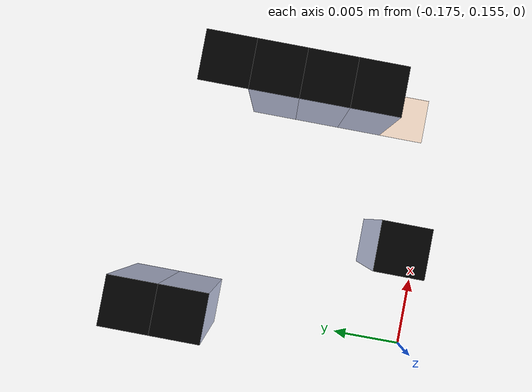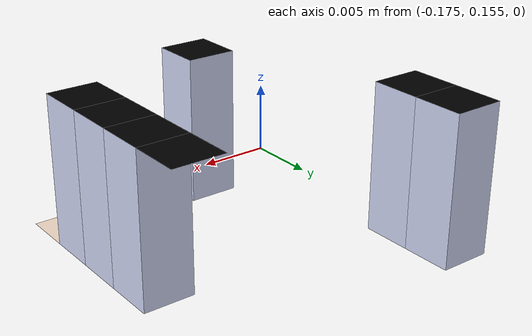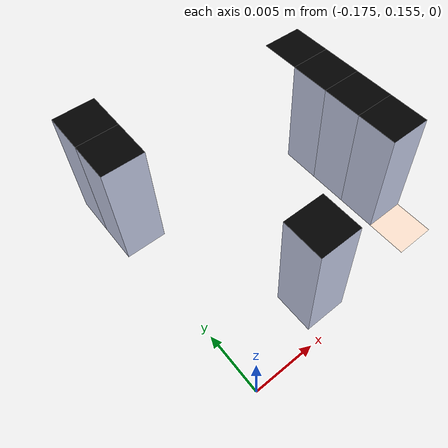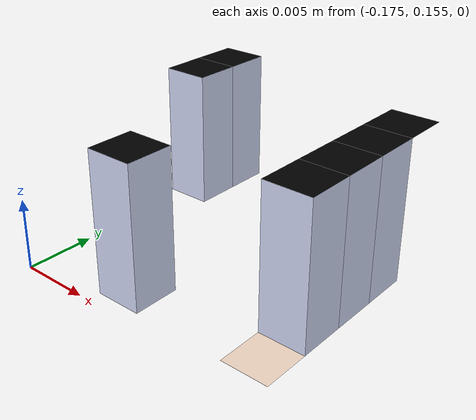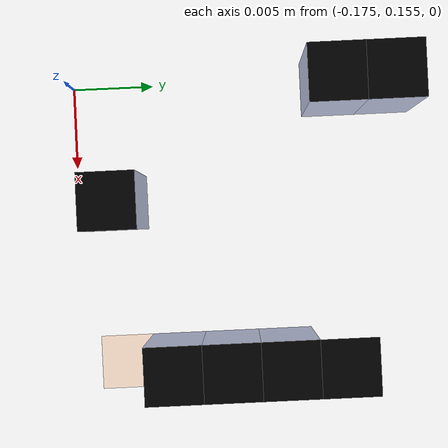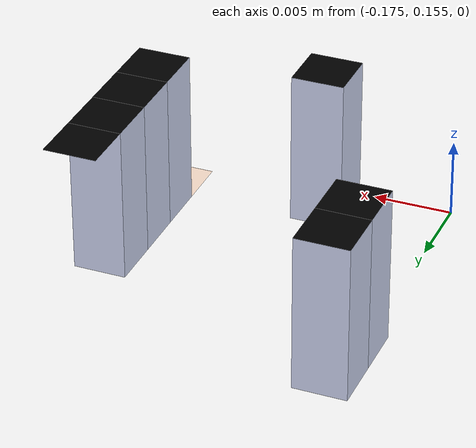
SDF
<sdf version="1.6">
 <world name="default">
  <model name="part114.obj">
   <static>1</static>
   <link name="link_d114">
    <inertial>
     <mass>0</mass>
     <inertia>
      <ixx>0.166667</ixx>
      <ixy>0</ixy>
      <ixz>0</ixz>
      <iyy>0.166667</iyy>
      <iyz>0</iyz>
      <izz>0.166667</izz>
     </inertia>
    </inertial>
    <collision name="collision_114">
     <geometry><mesh><scale>1 1 1</scale><uri>part114.obj</uri></mesh></geometry>
    </collision>
    <visual name="visual">
     <geometry><mesh><scale>1 1 1</scale><uri>part114.obj</uri></mesh></geometry>
     <material>
      <ambient>1 0 0 1</ambient>
      <diffuse>1.000000 0.895150 0.815106 0.000000</diffuse>
      <specular>0.1 0.1 0.1 1</specular>
      <emissive>0 0 0 0</emissive>
     </material>
    </visual>
   </link>
  </model>
  <model name="part115.obj">
   <static>1</static>
   <link name="link_d115">
    <inertial>
     <mass>0</mass>
     <inertia>
      <ixx>0.166667</ixx>
      <ixy>0</ixy>
      <ixz>0</ixz>
      <iyy>0.166667</iyy>
      <iyz>0</iyz>
      <izz>0.166667</izz>
     </inertia>
    </inertial>
    <collision name="collision_115">
     <geometry><mesh><scale>1 1 1</scale><uri>part115.obj</uri></mesh></geometry>
    </collision>
    <visual name="visual">
     <geometry><mesh><scale>1 1 1</scale><uri>part115.obj</uri></mesh></geometry>
     <material>
      <ambient>1 0 0 1</ambient>
      <diffuse>0.000000 0.000000 0.000000 0.000000</diffuse>
      <specular>0.1 0.1 0.1 1</specular>
      <emissive>0 0 0 0</emissive>
     </material>
    </visual>
   </link>
  </model>
  <model name="part116.obj">
   <static>1</static>
   <link name="link_d116">
    <inertial>
     <mass>0</mass>
     <inertia>
      <ixx>0.166667</ixx>
      <ixy>0</ixy>
      <ixz>0</ixz>
      <iyy>0.166667</iyy>
      <iyz>0</iyz>
      <izz>0.166667</izz>
     </inertia>
    </inertial>
    <collision name="collision_116">
     <geometry><mesh><scale>1 1 1</scale><uri>part116.obj</uri></mesh></geometry>
    </collision>
    <visual name="visual">
     <geometry><mesh><scale>1 1 1</scale><uri>part116.obj</uri></mesh></geometry>
     <material>
      <ambient>1 0 0 1</ambient>
      <diffuse>0.792160 0.819610 0.933330 0.000000</diffuse>
      <specular>0.1 0.1 0.1 1</specular>
      <emissive>0 0 0 0</emissive>
     </material>
    </visual>
   </link>
  </model>
  <model name="part117.obj">
   <static>1</static>
   <link name="link_d117">
    <inertial>
     <mass>0</mass>
     <inertia>
      <ixx>0.166667</ixx>
      <ixy>0</ixy>
      <ixz>0</ixz>
      <iyy>0.166667</iyy>
      <iyz>0</iyz>
      <izz>0.166667</izz>
     </inertia>
    </inertial>
    <collision name="collision_117">
     <geometry><mesh><scale>1 1 1</scale><uri>part117.obj</uri></mesh></geometry>
    </collision>
    <visual name="visual">
     <geometry><mesh><scale>1 1 1</scale><uri>part117.obj</uri></mesh></geometry>
     <material>
      <ambient>1 0 0 1</ambient>
      <diffuse>1.000000 0.895150 0.815106 0.000000</diffuse>
      <specular>0.1 0.1 0.1 1</specular>
      <emissive>0 0 0 0</emissive>
     </material>
    </visual>
   </link>
  </model>
  <model name="part118.obj">
   <static>1</static>
   <link name="link_d118">
    <inertial>
     <mass>0</mass>
     <inertia>
      <ixx>0.166667</ixx>
      <ixy>0</ixy>
      <ixz>0</ixz>
      <iyy>0.166667</iyy>
      <iyz>0</iyz>
      <izz>0.166667</izz>
     </inertia>
    </inertial>
    <collision name="collision_118">
     <geometry><mesh><scale>1 1 1</scale><uri>part118.obj</uri></mesh></geometry>
    </collision>
    <visual name="visual">
     <geometry><mesh><scale>1 1 1</scale><uri>part118.obj</uri></mesh></geometry>
     <material>
      <ambient>1 0 0 1</ambient>
      <diffuse>0.000000 0.000000 0.000000 0.000000</diffuse>
      <specular>0.1 0.1 0.1 1</specular>
      <emissive>0 0 0 0</emissive>
     </material>
    </visual>
   </link>
  </model>
  <model name="part119.obj">
   <static>1</static>
   <link name="link_d119">
    <inertial>
     <mass>0</mass>
     <inertia>
      <ixx>0.166667</ixx>
      <ixy>0</ixy>
      <ixz>0</ixz>
      <iyy>0.166667</iyy>
      <iyz>0</iyz>
      <izz>0.166667</izz>
     </inertia>
    </inertial>
    <collision name="collision_119">
     <geometry><mesh><scale>1 1 1</scale><uri>part119.obj</uri></mesh></geometry>
    </collision>
    <visual name="visual">
     <geometry><mesh><scale>1 1 1</scale><uri>part119.obj</uri></mesh></geometry>
     <material>
      <ambient>1 0 0 1</ambient>
      <diffuse>0.792160 0.819610 0.933330 0.000000</diffuse>
      <specular>0.1 0.1 0.1 1</specular>
      <emissive>0 0 0 0</emissive>
     </material>
    </visual>
   </link>
  </model>
  <model name="part120.obj">
   <static>1</static>
   <link name="link_d120">
    <inertial>
     <mass>0</mass>
     <inertia>
      <ixx>0.166667</ixx>
      <ixy>0</ixy>
      <ixz>0</ixz>
      <iyy>0.166667</iyy>
      <iyz>0</iyz>
      <izz>0.166667</izz>
     </inertia>
    </inertial>
    <collision name="collision_120">
     <geometry><mesh><scale>1 1 1</scale><uri>part120.obj</uri></mesh></geometry>
    </collision>
    <visual name="visual">
     <geometry><mesh><scale>1 1 1</scale><uri>part120.obj</uri></mesh></geometry>
     <material>
      <ambient>1 0 0 1</ambient>
      <diffuse>1.000000 0.895150 0.815106 0.000000</diffuse>
      <specular>0.1 0.1 0.1 1</specular>
      <emissive>0 0 0 0</emissive>
     </material>
    </visual>
   </link>
  </model>
  <model name="part121.obj">
   <static>1</static>
   <link name="link_d121">
    <inertial>
     <mass>0</mass>
     <inertia>
      <ixx>0.166667</ixx>
      <ixy>0</ixy>
      <ixz>0</ixz>
      <iyy>0.166667</iyy>
      <iyz>0</iyz>
      <izz>0.166667</izz>
     </inertia>
    </inertial>
    <collision name="collision_121">
     <geometry><mesh><scale>1 1 1</scale><uri>part121.obj</uri></mesh></geometry>
    </collision>
    <visual name="visual">
     <geometry><mesh><scale>1 1 1</scale><uri>part121.obj</uri></mesh></geometry>
     <material>
      <ambient>1 0 0 1</ambient>
      <diffuse>0.000000 0.000000 0.000000 0.000000</diffuse>
      <specular>0.1 0.1 0.1 1</specular>
      <emissive>0 0 0 0</emissive>
     </material>
    </visual>
   </link>
  </model>
  <model name="part122.obj">
   <static>1</static>
   <link name="link_d122">
    <inertial>
     <mass>0</mass>
     <inertia>
      <ixx>0.166667</ixx>
      <ixy>0</ixy>
      <ixz>0</ixz>
      <iyy>0.166667</iyy>
      <iyz>0</iyz>
      <izz>0.166667</izz>
     </inertia>
    </inertial>
    <collision name="collision_122">
     <geometry><mesh><scale>1 1 1</scale><uri>part122.obj</uri></mesh></geometry>
    </collision>
    <visual name="visual">
     <geometry><mesh><scale>1 1 1</scale><uri>part122.obj</uri></mesh></geometry>
     <material>
      <ambient>1 0 0 1</ambient>
      <diffuse>0.792160 0.819610 0.933330 0.000000</diffuse>
      <specular>0.1 0.1 0.1 1</specular>
      <emissive>0 0 0 0</emissive>
     </material>
    </visual>
   </link>
  </model>
  <model name="part123.obj">
   <static>1</static>
   <link name="link_d123">
    <inertial>
     <mass>0</mass>
     <inertia>
      <ixx>0.166667</ixx>
      <ixy>0</ixy>
      <ixz>0</ixz>
      <iyy>0.166667</iyy>
      <iyz>0</iyz>
      <izz>0.166667</izz>
     </inertia>
    </inertial>
    <collision name="collision_123">
     <geometry><mesh><scale>1 1 1</scale><uri>part123.obj</uri></mesh></geometry>
    </collision>
    <visual name="visual">
     <geometry><mesh><scale>1 1 1</scale><uri>part123.obj</uri></mesh></geometry>
     <material>
      <ambient>1 0 0 1</ambient>
      <diffuse>1.000000 0.895150 0.815106 0.000000</diffuse>
      <specular>0.1 0.1 0.1 1</specular>
      <emissive>0 0 0 0</emissive>
     </material>
    </visual>
   </link>
  </model>
  <model name="part124.obj">
   <static>1</static>
   <link name="link_d124">
    <inertial>
     <mass>0</mass>
     <inertia>
      <ixx>0.166667</ixx>
      <ixy>0</ixy>
      <ixz>0</ixz>
      <iyy>0.166667</iyy>
      <iyz>0</iyz>
      <izz>0.166667</izz>
     </inertia>
    </inertial>
    <collision name="collision_124">
     <geometry><mesh><scale>1 1 1</scale><uri>part124.obj</uri></mesh></geometry>
    </collision>
    <visual name="visual">
     <geometry><mesh><scale>1 1 1</scale><uri>part124.obj</uri></mesh></geometry>
     <material>
      <ambient>1 0 0 1</ambient>
      <diffuse>0.000000 0.000000 0.000000 0.000000</diffuse>
      <specular>0.1 0.1 0.1 1</specular>
      <emissive>0 0 0 0</emissive>
     </material>
    </visual>
   </link>
  </model>
  <model name="part125.obj">
   <static>1</static>
   <link name="link_d125">
    <inertial>
     <mass>0</mass>
     <inertia>
      <ixx>0.166667</ixx>
      <ixy>0</ixy>
      <ixz>0</ixz>
      <iyy>0.166667</iyy>
      <iyz>0</iyz>
      <izz>0.166667</izz>
     </inertia>
    </inertial>
    <collision name="collision_125">
     <geometry><mesh><scale>1 1 1</scale><uri>part125.obj</uri></mesh></geometry>
    </collision>
    <visual name="visual">
     <geometry><mesh><scale>1 1 1</scale><uri>part125.obj</uri></mesh></geometry>
     <material>
      <ambient>1 0 0 1</ambient>
      <diffuse>0.792160 0.819610 0.933330 0.000000</diffuse>
      <specular>0.1 0.1 0.1 1</specular>
      <emissive>0 0 0 0</emissive>
     </material>
    </visual>
   </link>
  </model>
  <model name="part126.obj">
   <static>1</static>
   <link name="link_d126">
    <inertial>
     <mass>0</mass>
     <inertia>
      <ixx>0.166667</ixx>
      <ixy>0</ixy>
      <ixz>0</ixz>
      <iyy>0.166667</iyy>
      <iyz>0</iyz>
      <izz>0.166667</izz>
     </inertia>
    </inertial>
    <collision name="collision_126">
     <geometry><mesh><scale>1 1 1</scale><uri>part126.obj</uri></mesh></geometry>
    </collision>
    <visual name="visual">
     <geometry><mesh><scale>1 1 1</scale><uri>part126.obj</uri></mesh></geometry>
     <material>
      <ambient>1 0 0 1</ambient>
      <diffuse>1.000000 0.895150 0.815106 0.000000</diffuse>
      <specular>0.1 0.1 0.1 1</specular>
      <emissive>0 0 0 0</emissive>
     </material>
    </visual>
   </link>
  </model>
  <model name="part127.obj">
   <static>1</static>
   <link name="link_d127">
    <inertial>
     <mass>0</mass>
     <inertia>
      <ixx>0.166667</ixx>
      <ixy>0</ixy>
      <ixz>0</ixz>
      <iyy>0.166667</iyy>
      <iyz>0</iyz>
      <izz>0.166667</izz>
     </inertia>
    </inertial>
    <collision name="collision_127">
     <geometry><mesh><scale>1 1 1</scale><uri>part127.obj</uri></mesh></geometry>
    </collision>
    <visual name="visual">
     <geometry><mesh><scale>1 1 1</scale><uri>part127.obj</uri></mesh></geometry>
     <material>
      <ambient>1 0 0 1</ambient>
      <diffuse>0.000000 0.000000 0.000000 0.000000</diffuse>
      <specular>0.1 0.1 0.1 1</specular>
      <emissive>0 0 0 0</emissive>
     </material>
    </visual>
   </link>
  </model>
  <model name="part128.obj">
   <static>1</static>
   <link name="link_d128">
    <inertial>
     <mass>0</mass>
     <inertia>
      <ixx>0.166667</ixx>
      <ixy>0</ixy>
      <ixz>0</ixz>
      <iyy>0.166667</iyy>
      <iyz>0</iyz>
      <izz>0.166667</izz>
     </inertia>
    </inertial>
    <collision name="collision_128">
     <geometry><mesh><scale>1 1 1</scale><uri>part128.obj</uri></mesh></geometry>
    </collision>
    <visual name="visual">
     <geometry><mesh><scale>1 1 1</scale><uri>part128.obj</uri></mesh></geometry>
     <material>
      <ambient>1 0 0 1</ambient>
      <diffuse>0.792160 0.819610 0.933330 0.000000</diffuse>
      <specular>0.1 0.1 0.1 1</specular>
      <emissive>0 0 0 0</emissive>
     </material>
    </visual>
   </link>
  </model>
  <model name="part129.obj">
   <static>1</static>
   <link name="link_d129">
    <inertial>
     <mass>0</mass>
     <inertia>
      <ixx>0.166667</ixx>
      <ixy>0</ixy>
      <ixz>0</ixz>
      <iyy>0.166667</iyy>
      <iyz>0</iyz>
      <izz>0.166667</izz>
     </inertia>
    </inertial>
    <collision name="collision_129">
     <geometry><mesh><scale>1 1 1</scale><uri>part129.obj</uri></mesh></geometry>
    </collision>
    <visual name="visual">
     <geometry><mesh><scale>1 1 1</scale><uri>part129.obj</uri></mesh></geometry>
     <material>
      <ambient>1 0 0 1</ambient>
      <diffuse>1.000000 0.895150 0.815106 0.000000</diffuse>
      <specular>0.1 0.1 0.1 1</specular>
      <emissive>0 0 0 0</emissive>
     </material>
    </visual>
   </link>
  </model>
  <model name="part130.obj">
   <static>1</static>
   <link name="link_d130">
    <inertial>
     <mass>0</mass>
     <inertia>
      <ixx>0.166667</ixx>
      <ixy>0</ixy>
      <ixz>0</ixz>
      <iyy>0.166667</iyy>
      <iyz>0</iyz>
      <izz>0.166667</izz>
     </inertia>
    </inertial>
    <collision name="collision_130">
     <geometry><mesh><scale>1 1 1</scale><uri>part130.obj</uri></mesh></geometry>
    </collision>
    <visual name="visual">
     <geometry><mesh><scale>1 1 1</scale><uri>part130.obj</uri></mesh></geometry>
     <material>
      <ambient>1 0 0 1</ambient>
      <diffuse>0.000000 0.000000 0.000000 0.000000</diffuse>
      <specular>0.1 0.1 0.1 1</specular>
      <emissive>0 0 0 0</emissive>
     </material>
    </visual>
   </link>
  </model>
  <model name="part131.obj">
   <static>1</static>
   <link name="link_d131">
    <inertial>
     <mass>0</mass>
     <inertia>
      <ixx>0.166667</ixx>
      <ixy>0</ixy>
      <ixz>0</ixz>
      <iyy>0.166667</iyy>
      <iyz>0</iyz>
      <izz>0.166667</izz>
     </inertia>
    </inertial>
    <collision name="collision_131">
     <geometry><mesh><scale>1 1 1</scale><uri>part131.obj</uri></mesh></geometry>
    </collision>
    <visual name="visual">
     <geometry><mesh><scale>1 1 1</scale><uri>part131.obj</uri></mesh></geometry>
     <material>
      <ambient>1 0 0 1</ambient>
      <diffuse>0.792160 0.819610 0.933330 0.000000</diffuse>
      <specular>0.1 0.1 0.1 1</specular>
      <emissive>0 0 0 0</emissive>
     </material>
    </visual>
   </link>
  </model>
  <model name="part132.obj">
   <static>1</static>
   <link name="link_d132">
    <inertial>
     <mass>0</mass>
     <inertia>
      <ixx>0.166667</ixx>
      <ixy>0</ixy>
      <ixz>0</ixz>
      <iyy>0.166667</iyy>
      <iyz>0</iyz>
      <izz>0.166667</izz>
     </inertia>
    </inertial>
    <collision name="collision_132">
     <geometry><mesh><scale>1 1 1</scale><uri>part132.obj</uri></mesh></geometry>
    </collision>
    <visual name="visual">
     <geometry><mesh><scale>1 1 1</scale><uri>part132.obj</uri></mesh></geometry>
     <material>
      <ambient>1 0 0 1</ambient>
      <diffuse>1.000000 0.895150 0.815106 0.000000</diffuse>
      <specular>0.1 0.1 0.1 1</specular>
      <emissive>0 0 0 0</emissive>
     </material>
    </visual>
   </link>
  </model>
  <model name="part133.obj">
   <static>1</static>
   <link name="link_d133">
    <inertial>
     <mass>0</mass>
     <inertia>
      <ixx>0.166667</ixx>
      <ixy>0</ixy>
      <ixz>0</ixz>
      <iyy>0.166667</iyy>
      <iyz>0</iyz>
      <izz>0.166667</izz>
     </inertia>
    </inertial>
    <collision name="collision_133">
     <geometry><mesh><scale>1 1 1</scale><uri>part133.obj</uri></mesh></geometry>
    </collision>
    <visual name="visual">
     <geometry><mesh><scale>1 1 1</scale><uri>part133.obj</uri></mesh></geometry>
     <material>
      <ambient>1 0 0 1</ambient>
      <diffuse>0.000000 0.000000 0.000000 0.000000</diffuse>
      <specular>0.1 0.1 0.1 1</specular>
      <emissive>0 0 0 0</emissive>
     </material>
    </visual>
   </link>
  </model>
 </world>
</sdf>
